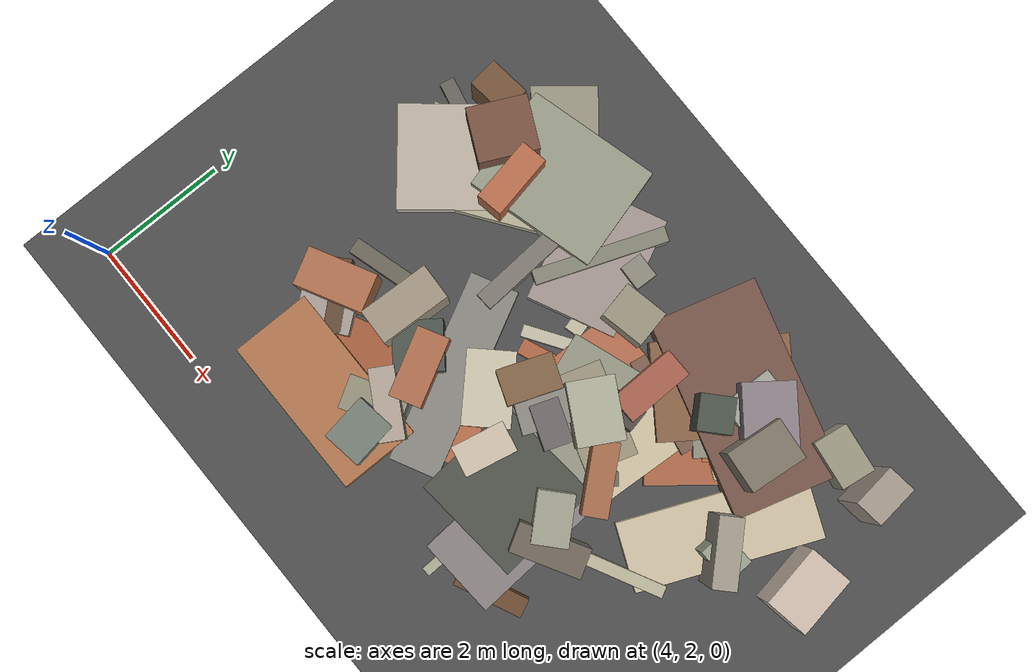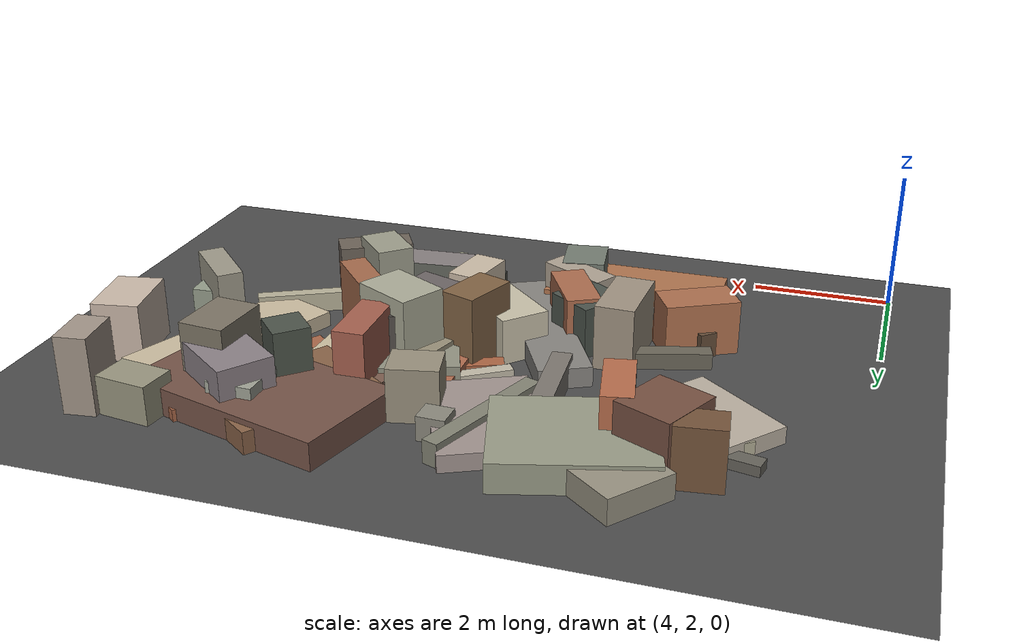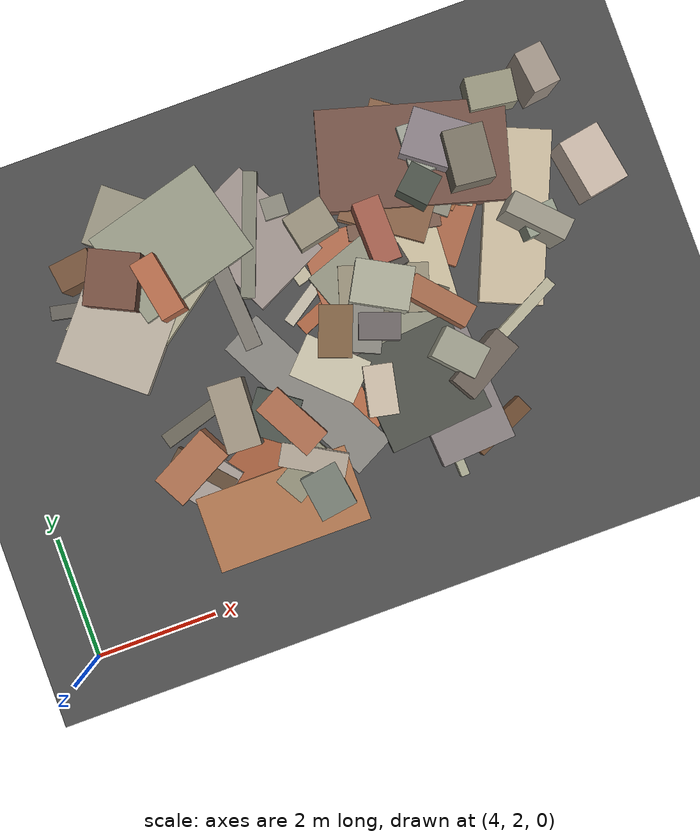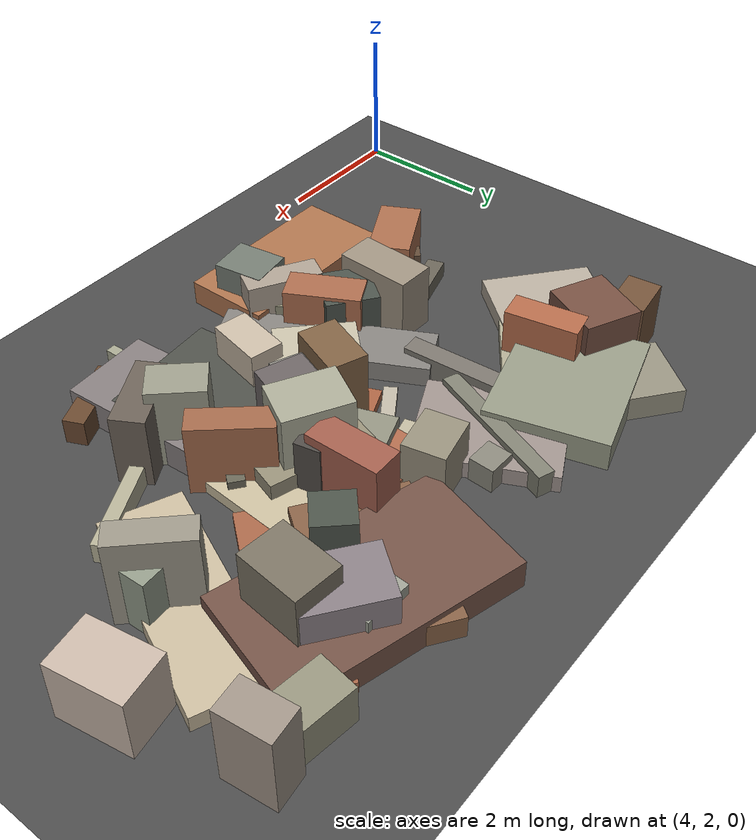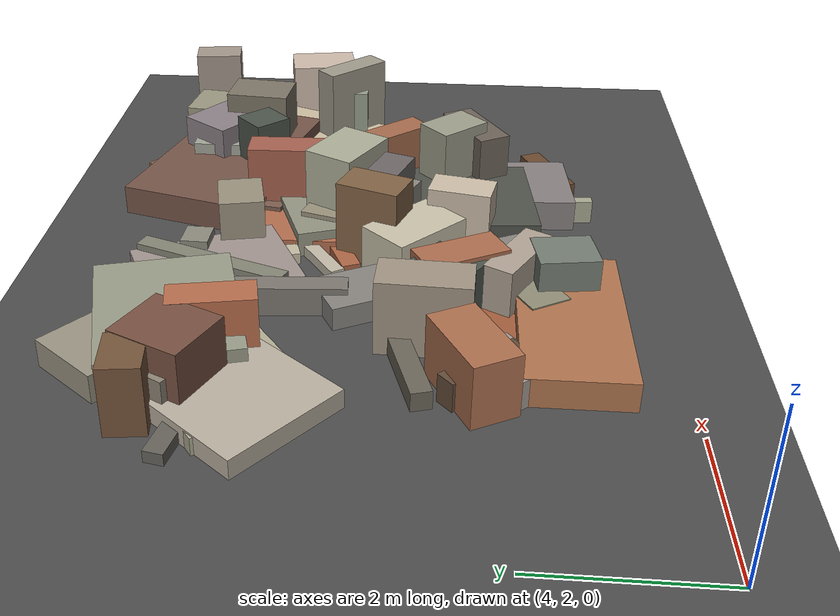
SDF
<sdf version="1.6">
 <world name="navitas_arena">
  <model name="ground_plane">
   <static>true</static>
   <link name="link">
    <collision name="collision">
     <geometry><plane><normal>0 0 1</normal><size>400 400</size></plane></geometry>
     <surface><friction><ode><mu>0.800</mu><mu2>0.800</mu2></ode></friction></surface>
    </collision>
    <visual name="visual">
     <cast_shadows>false</cast_shadows>
     <geometry><plane><normal>0 0 1</normal><size>400 400</size></plane></geometry>
     <material>
      <specular>0.04 0.04 0.04 1</specular>
      <script>
       <uri>file://media/materials/scripts/navitas_asphalt.material</uri>
       <name>Navitas/RealArenaAsphalt</name>
      </script>
     </material>
    </visual>
   </link>
  </model>
  <model name="deb_orta_6">
   <static>true</static>
   <pose>7.530 4.062 0.000 0 0 0</pose>
   <link name="link">
    <collision name="col_0">
     <pose>-0.069 0.864 0.470 0.000 0.000 1.528</pose>
     <geometry><box><size>1.107 0.557 0.940</size></box></geometry>
    </collision>
    <visual name="vis_0">
     <pose>-0.069 0.864 0.470 0.000 0.000 1.528</pose>
     <geometry><box><size>1.107 0.557 0.940</size></box></geometry>
     <material>
      <ambient>0.58 0.53 0.47 1</ambient>
      <diffuse>0.63 0.58 0.51 1</diffuse>
      <specular>0.05 0.05 0.045 1</specular>
     </material>
    </visual>
    <collision name="col_1">
     <pose>0.189 0.129 0.082 0.000 0.000 3.618</pose>
     <geometry><box><size>2.260 0.731 0.165</size></box></geometry>
    </collision>
    <visual name="vis_1">
     <pose>0.189 0.129 0.082 0.000 0.000 3.618</pose>
     <geometry><box><size>2.260 0.731 0.165</size></box></geometry>
     <material>
      <ambient>0.59 0.34 0.22 1</ambient>
      <diffuse>0.64 0.37 0.24 1</diffuse>
      <specular>0.05 0.05 0.045 1</specular>
     </material>
    </visual>
    <collision name="col_2">
     <pose>-0.860 0.202 0.180 0.000 0.000 2.301</pose>
     <geometry><box><size>1.088 0.252 0.359</size></box></geometry>
    </collision>
    <visual name="vis_2">
     <pose>-0.860 0.202 0.180 0.000 0.000 2.301</pose>
     <geometry><box><size>1.088 0.252 0.359</size></box></geometry>
     <material>
      <ambient>0.36 0.28 0.20 1</ambient>
      <diffuse>0.39 0.30 0.22 1</diffuse>
      <specular>0.05 0.05 0.045 1</specular>
     </material>
    </visual>
    <collision name="col_3">
     <pose>0.119 -0.811 0.182 0.000 0.000 3.142</pose>
     <geometry><box><size>2.541 1.250 0.364</size></box></geometry>
    </collision>
    <visual name="vis_3">
     <pose>0.119 -0.811 0.182 0.000 0.000 3.142</pose>
     <geometry><box><size>2.541 1.250 0.364</size></box></geometry>
     <material>
      <ambient>0.64 0.42 0.29 1</ambient>
      <diffuse>0.69 0.46 0.31 1</diffuse>
      <specular>0.05 0.05 0.045 1</specular>
     </material>
    </visual>
    <collision name="col_4">
     <pose>0.740 0.470 0.398 0.000 0.000 2.064</pose>
     <geometry><box><size>1.072 0.493 0.795</size></box></geometry>
    </collision>
    <visual name="vis_4">
     <pose>0.740 0.470 0.398 0.000 0.000 2.064</pose>
     <geometry><box><size>1.072 0.493 0.795</size></box></geometry>
     <material>
      <ambient>0.63 0.40 0.29 1</ambient>
      <diffuse>0.68 0.43 0.31 1</diffuse>
      <specular>0.05 0.05 0.045 1</specular>
     </material>
    </visual>
    <collision name="col_5">
     <pose>0.854 -0.218 0.375 0.000 0.000 2.623</pose>
     <geometry><box><size>1.074 0.381 0.750</size></box></geometry>
    </collision>
    <visual name="vis_5">
     <pose>0.854 -0.218 0.375 0.000 0.000 2.623</pose>
     <geometry><box><size>1.074 0.381 0.750</size></box></geometry>
     <material>
      <ambient>0.64 0.59 0.53 1</ambient>
      <diffuse>0.69 0.64 0.58 1</diffuse>
      <specular>0.05 0.05 0.045 1</specular>
     </material>
    </visual>
    <collision name="col_6">
     <pose>0.493 0.645 0.371 0.000 0.000 2.508</pose>
     <geometry><box><size>0.752 0.742 0.742</size></box></geometry>
    </collision>
    <visual name="vis_6">
     <pose>0.493 0.645 0.371 0.000 0.000 2.508</pose>
     <geometry><box><size>0.752 0.742 0.742</size></box></geometry>
     <material>
      <ambient>0.27 0.30 0.28 1</ambient>
      <diffuse>0.30 0.33 0.30 1</diffuse>
      <specular>0.05 0.05 0.045 1</specular>
     </material>
    </visual>
   </link>
  </model>
  <model name="deb_orta_40">
   <static>true</static>
   <pose>11.019 3.937 0.000 0 0 0</pose>
   <link name="link">
    <collision name="col_0">
     <pose>-0.459 -0.420 0.157 0.000 0.000 1.612</pose>
     <geometry><box><size>1.530 0.141 0.314</size></box></geometry>
    </collision>
    <visual name="vis_0">
     <pose>-0.459 -0.420 0.157 0.000 0.000 1.612</pose>
     <geometry><box><size>1.530 0.141 0.314</size></box></geometry>
     <material>
      <ambient>0.61 0.61 0.53 1</ambient>
      <diffuse>0.66 0.66 0.57 1</diffuse>
      <specular>0.05 0.05 0.045 1</specular>
     </material>
    </visual>
    <collision name="col_1">
     <pose>-0.165 0.171 0.205 0.000 0.000 1.638</pose>
     <geometry><box><size>2.134 1.239 0.411</size></box></geometry>
    </collision>
    <visual name="vis_1">
     <pose>-0.165 0.171 0.205 0.000 0.000 1.638</pose>
     <geometry><box><size>2.134 1.239 0.411</size></box></geometry>
     <material>
      <ambient>0.49 0.47 0.46 1</ambient>
      <diffuse>0.53 0.50 0.50 1</diffuse>
      <specular>0.05 0.05 0.045 1</specular>
     </material>
    </visual>
    <collision name="col_2">
     <pose>-0.411 0.682 0.117 0.000 0.000 -0.648</pose>
     <geometry><box><size>1.183 0.277 0.235</size></box></geometry>
    </collision>
    <visual name="vis_2">
     <pose>-0.411 0.682 0.117 0.000 0.000 -0.648</pose>
     <geometry><box><size>1.183 0.277 0.235</size></box></geometry>
     <material>
      <ambient>0.34 0.33 0.33 1</ambient>
      <diffuse>0.37 0.36 0.35 1</diffuse>
      <specular>0.05 0.05 0.045 1</specular>
     </material>
    </visual>
    <collision name="col_3">
     <pose>0.375 -0.628 0.183 0.000 0.000 0.429</pose>
     <geometry><box><size>1.068 0.291 0.365</size></box></geometry>
    </collision>
    <visual name="vis_3">
     <pose>0.375 -0.628 0.183 0.000 0.000 0.429</pose>
     <geometry><box><size>1.068 0.291 0.365</size></box></geometry>
     <material>
      <ambient>0.39 0.27 0.18 1</ambient>
      <diffuse>0.42 0.29 0.19 1</diffuse>
      <specular>0.05 0.05 0.045 1</specular>
     </material>
    </visual>
    <collision name="col_4">
     <pose>-0.610 0.465 0.208 0.000 0.000 0.092</pose>
     <geometry><box><size>1.730 1.667 0.416</size></box></geometry>
    </collision>
    <visual name="vis_4">
     <pose>-0.610 0.465 0.208 0.000 0.000 0.092</pose>
     <geometry><box><size>1.730 1.667 0.416</size></box></geometry>
     <material>
      <ambient>0.29 0.30 0.27 1</ambient>
      <diffuse>0.31 0.32 0.29 1</diffuse>
      <specular>0.05 0.05 0.045 1</specular>
     </material>
    </visual>
   </link>
  </model>
  <model name="deb_orta_56">
   <static>true</static>
   <pose>12.307 7.168 0.000 0 0 0</pose>
   <link name="link">
    <collision name="col_0">
     <pose>-0.258 0.096 0.085 0.000 0.000 0.904</pose>
     <geometry><box><size>2.559 0.924 0.170</size></box></geometry>
    </collision>
    <visual name="vis_0">
     <pose>-0.258 0.096 0.085 0.000 0.000 0.904</pose>
     <geometry><box><size>2.559 0.924 0.170</size></box></geometry>
     <material>
      <ambient>0.62 0.38 0.27 1</ambient>
      <diffuse>0.67 0.41 0.29 1</diffuse>
      <specular>0.05 0.05 0.045 1</specular>
     </material>
    </visual>
    <collision name="col_1">
     <pose>-0.021 0.337 0.547 0.000 0.000 3.043</pose>
     <geometry><box><size>0.650 0.887 1.095</size></box></geometry>
    </collision>
    <visual name="vis_1">
     <pose>-0.021 0.337 0.547 0.000 0.000 3.043</pose>
     <geometry><box><size>0.650 0.887 1.095</size></box></geometry>
     <material>
      <ambient>0.45 0.42 0.37 1</ambient>
      <diffuse>0.49 0.46 0.40 1</diffuse>
      <specular>0.05 0.05 0.045 1</specular>
     </material>
    </visual>
    <collision name="col_2">
     <pose>0.626 -0.051 0.105 0.000 0.000 0.935</pose>
     <geometry><box><size>0.485 0.336 0.211</size></box></geometry>
    </collision>
    <visual name="vis_2">
     <pose>0.626 -0.051 0.105 0.000 0.000 0.935</pose>
     <geometry><box><size>0.485 0.336 0.211</size></box></geometry>
     <material>
      <ambient>0.61 0.60 0.54 1</ambient>
      <diffuse>0.66 0.65 0.59 1</diffuse>
      <specular>0.05 0.05 0.045 1</specular>
     </material>
    </visual>
    <collision name="col_3">
     <pose>-0.557 -0.140 0.140 0.000 0.000 2.486</pose>
     <geometry><box><size>0.322 0.396 0.280</size></box></geometry>
    </collision>
    <visual name="vis_3">
     <pose>-0.557 -0.140 0.140 0.000 0.000 2.486</pose>
     <geometry><box><size>0.322 0.396 0.280</size></box></geometry>
     <material>
      <ambient>0.52 0.51 0.46 1</ambient>
      <diffuse>0.56 0.55 0.49 1</diffuse>
      <specular>0.05 0.05 0.045 1</specular>
     </material>
    </visual>
    <collision name="col_4">
     <pose>-0.594 -0.005 0.095 0.000 0.000 2.722</pose>
     <geometry><box><size>1.189 0.240 0.189</size></box></geometry>
    </collision>
    <visual name="vis_4">
     <pose>-0.594 -0.005 0.095 0.000 0.000 2.722</pose>
     <geometry><box><size>1.189 0.240 0.189</size></box></geometry>
     <material>
      <ambient>0.65 0.64 0.53 1</ambient>
      <diffuse>0.70 0.69 0.58 1</diffuse>
      <specular>0.05 0.05 0.045 1</specular>
     </material>
    </visual>
   </link>
  </model>
  <model name="deb_orta_132">
   <static>true</static>
   <pose>11.331 5.401 0.000 0 0 0</pose>
   <link name="link">
    <collision name="col_0">
     <pose>-0.566 0.751 0.131 0.000 0.000 4.411</pose>
     <geometry><box><size>0.320 0.203 0.262</size></box></geometry>
    </collision>
    <visual name="vis_0">
     <pose>-0.566 0.751 0.131 0.000 0.000 4.411</pose>
     <geometry><box><size>0.320 0.203 0.262</size></box></geometry>
     <material>
      <ambient>0.50 0.45 0.43 1</ambient>
      <diffuse>0.54 0.48 0.46 1</diffuse>
      <specular>0.05 0.05 0.045 1</specular>
     </material>
    </visual>
    <collision name="col_1">
     <pose>-0.231 -0.745 0.580 0.000 0.000 2.317</pose>
     <geometry><box><size>0.757 0.531 1.161</size></box></geometry>
    </collision>
    <visual name="vis_1">
     <pose>-0.231 -0.745 0.580 0.000 0.000 2.317</pose>
     <geometry><box><size>0.757 0.531 1.161</size></box></geometry>
     <material>
      <ambient>0.57 0.57 0.51 1</ambient>
      <diffuse>0.62 0.62 0.55 1</diffuse>
      <specular>0.05 0.05 0.045 1</specular>
     </material>
    </visual>
    <collision name="col_2">
     <pose>0.085 -1.050 0.505 0.000 0.000 3.662</pose>
     <geometry><box><size>1.068 0.451 1.010</size></box></geometry>
    </collision>
    <visual name="vis_2">
     <pose>0.085 -1.050 0.505 0.000 0.000 3.662</pose>
     <geometry><box><size>1.068 0.451 1.010</size></box></geometry>
     <material>
      <ambient>0.39 0.36 0.33 1</ambient>
      <diffuse>0.43 0.39 0.35 1</diffuse>
      <specular>0.05 0.05 0.045 1</specular>
     </material>
    </visual>
    <collision name="col_3">
     <pose>0.574 -0.729 0.144 0.000 0.000 3.622</pose>
     <geometry><box><size>2.398 0.184 0.289</size></box></geometry>
    </collision>
    <visual name="vis_3">
     <pose>0.574 -0.729 0.144 0.000 0.000 3.622</pose>
     <geometry><box><size>2.398 0.184 0.289</size></box></geometry>
     <material>
      <ambient>0.66 0.65 0.55 1</ambient>
      <diffuse>0.72 0.70 0.60 1</diffuse>
      <specular>0.05 0.05 0.045 1</specular>
     </material>
    </visual>
    <collision name="col_4">
     <pose>-1.117 0.376 0.100 0.000 0.000 4.187</pose>
     <geometry><box><size>0.478 0.465 0.201</size></box></geometry>
    </collision>
    <visual name="vis_4">
     <pose>-1.117 0.376 0.100 0.000 0.000 4.187</pose>
     <geometry><box><size>0.478 0.465 0.201</size></box></geometry>
     <material>
      <ambient>0.72 0.66 0.57 1</ambient>
      <diffuse>0.78 0.71 0.61 1</diffuse>
      <specular>0.05 0.05 0.045 1</specular>
     </material>
    </visual>
   </link>
  </model>
  <model name="deb_orta_134">
   <static>true</static>
   <pose>6.695 7.687 0.000 0 0 0</pose>
   <link name="link">
    <collision name="col_0">
     <pose>-0.127 -0.521 0.109 0.000 0.000 3.773</pose>
     <geometry><box><size>2.034 1.493 0.217</size></box></geometry>
    </collision>
    <visual name="vis_0">
     <pose>-0.127 -0.521 0.109 0.000 0.000 3.773</pose>
     <geometry><box><size>2.034 1.493 0.217</size></box></geometry>
     <material>
      <ambient>0.65 0.63 0.54 1</ambient>
      <diffuse>0.70 0.68 0.58 1</diffuse>
      <specular>0.05 0.05 0.045 1</specular>
     </material>
    </visual>
    <collision name="col_1">
     <pose>-0.003 0.821 0.178 0.000 0.000 2.468</pose>
     <geometry><box><size>0.865 0.991 0.357</size></box></geometry>
    </collision>
    <visual name="vis_1">
     <pose>-0.003 0.821 0.178 0.000 0.000 2.468</pose>
     <geometry><box><size>0.865 0.991 0.357</size></box></geometry>
     <material>
      <ambient>0.56 0.54 0.47 1</ambient>
      <diffuse>0.60 0.58 0.51 1</diffuse>
      <specular>0.05 0.05 0.045 1</specular>
     </material>
    </visual>
    <collision name="col_2">
     <pose>0.683 0.096 0.121 0.000 0.000 2.749</pose>
     <geometry><box><size>1.176 0.239 0.242</size></box></geometry>
    </collision>
    <visual name="vis_2">
     <pose>0.683 0.096 0.121 0.000 0.000 2.749</pose>
     <geometry><box><size>1.176 0.239 0.242</size></box></geometry>
     <material>
      <ambient>0.63 0.39 0.24 1</ambient>
      <diffuse>0.68 0.42 0.26 1</diffuse>
      <specular>0.05 0.05 0.045 1</specular>
     </material>
    </visual>
    <collision name="col_3">
     <pose>-0.832 0.246 0.425 0.000 0.000 3.267</pose>
     <geometry><box><size>0.651 0.469 0.850</size></box></geometry>
    </collision>
    <visual name="vis_3">
     <pose>-0.832 0.246 0.425 0.000 0.000 3.267</pose>
     <geometry><box><size>0.651 0.469 0.850</size></box></geometry>
     <material>
      <ambient>0.43 0.31 0.21 1</ambient>
      <diffuse>0.46 0.33 0.23 1</diffuse>
      <specular>0.05 0.05 0.045 1</specular>
     </material>
    </visual>
    <collision name="col_4">
     <pose>0.310 -0.441 0.430 0.000 0.000 1.761</pose>
     <geometry><box><size>1.014 0.417 0.859</size></box></geometry>
    </collision>
    <visual name="vis_4">
     <pose>0.310 -0.441 0.430 0.000 0.000 1.761</pose>
     <geometry><box><size>1.014 0.417 0.859</size></box></geometry>
     <material>
      <ambient>0.67 0.40 0.28 1</ambient>
      <diffuse>0.72 0.43 0.30 1</diffuse>
      <specular>0.05 0.05 0.045 1</specular>
     </material>
    </visual>
    <collision name="col_5">
     <pose>0.708 0.184 0.204 0.000 0.000 3.415</pose>
     <geometry><box><size>2.085 1.652 0.407</size></box></geometry>
    </collision>
    <visual name="vis_5">
     <pose>0.708 0.184 0.204 0.000 0.000 3.415</pose>
     <geometry><box><size>2.085 1.652 0.407</size></box></geometry>
     <material>
      <ambient>0.55 0.56 0.49 1</ambient>
      <diffuse>0.60 0.61 0.53 1</diffuse>
      <specular>0.05 0.05 0.045 1</specular>
     </material>
    </visual>
   </link>
  </model>
  <model name="deb_orta_154">
   <static>true</static>
   <pose>9.242 7.827 0.000 0 0 0</pose>
   <link name="link">
    <collision name="col_0">
     <pose>-0.078 0.052 0.174 0.000 0.000 1.535</pose>
     <geometry><box><size>0.352 0.393 0.349</size></box></geometry>
    </collision>
    <visual name="vis_0">
     <pose>-0.078 0.052 0.174 0.000 0.000 1.535</pose>
     <geometry><box><size>0.352 0.393 0.349</size></box></geometry>
     <material>
      <ambient>0.51 0.50 0.45 1</ambient>
      <diffuse>0.55 0.54 0.49 1</diffuse>
      <specular>0.05 0.05 0.045 1</specular>
     </material>
    </visual>
    <collision name="col_1">
     <pose>-0.612 -0.229 0.166 0.000 0.000 1.210</pose>
     <geometry><box><size>2.051 0.232 0.331</size></box></geometry>
    </collision>
    <visual name="vis_1">
     <pose>-0.612 -0.229 0.166 0.000 0.000 1.210</pose>
     <geometry><box><size>2.051 0.232 0.331</size></box></geometry>
     <material>
      <ambient>0.48 0.48 0.43 1</ambient>
      <diffuse>0.52 0.52 0.46 1</diffuse>
      <specular>0.05 0.05 0.045 1</specular>
     </material>
    </visual>
    <collision name="col_2">
     <pose>-0.226 -0.421 0.074 0.000 0.000 1.836</pose>
     <geometry><box><size>1.708 0.261 0.148</size></box></geometry>
    </collision>
    <visual name="vis_2">
     <pose>-0.226 -0.421 0.074 0.000 0.000 1.836</pose>
     <geometry><box><size>1.708 0.261 0.148</size></box></geometry>
     <material>
      <ambient>0.70 0.68 0.58 1</ambient>
      <diffuse>0.76 0.73 0.63 1</diffuse>
      <specular>0.05 0.05 0.045 1</specular>
     </material>
    </visual>
    <collision name="col_3">
     <pose>0.370 -0.450 0.380 0.000 0.000 1.783</pose>
     <geometry><box><size>0.578 0.696 0.760</size></box></geometry>
    </collision>
    <visual name="vis_3">
     <pose>0.370 -0.450 0.380 0.000 0.000 1.783</pose>
     <geometry><box><size>0.578 0.696 0.760</size></box></geometry>
     <material>
      <ambient>0.55 0.53 0.46 1</ambient>
      <diffuse>0.60 0.57 0.49 1</diffuse>
      <specular>0.05 0.05 0.045 1</specular>
     </material>
    </visual>
    <collision name="col_4">
     <pose>-0.604 -0.286 0.121 0.000 0.000 2.024</pose>
     <geometry><box><size>1.881 1.396 0.242</size></box></geometry>
    </collision>
    <visual name="vis_4">
     <pose>-0.604 -0.286 0.121 0.000 0.000 2.024</pose>
     <geometry><box><size>1.881 1.396 0.242</size></box></geometry>
     <material>
      <ambient>0.58 0.54 0.52 1</ambient>
      <diffuse>0.63 0.58 0.56 1</diffuse>
      <specular>0.05 0.05 0.045 1</specular>
     </material>
    </visual>
   </link>
  </model>
  <model name="deb_orta_195">
   <static>true</static>
   <pose>7.157 4.307 0.000 0 0 0</pose>
   <link name="link">
    <collision name="col_0">
     <pose>-0.229 0.807 0.118 0.000 0.000 0.288</pose>
     <geometry><box><size>1.467 0.247 0.235</size></box></geometry>
    </collision>
    <visual name="vis_0">
     <pose>-0.229 0.807 0.118 0.000 0.000 0.288</pose>
     <geometry><box><size>1.467 0.247 0.235</size></box></geometry>
     <material>
      <ambient>0.39 0.37 0.33 1</ambient>
      <diffuse>0.42 0.40 0.35 1</diffuse>
      <specular>0.05 0.05 0.045 1</specular>
     </material>
    </visual>
    <collision name="col_1">
     <pose>-0.614 0.078 0.391 0.000 0.000 0.490</pose>
     <geometry><box><size>1.065 0.594 0.782</size></box></geometry>
    </collision>
    <visual name="vis_1">
     <pose>-0.614 0.078 0.391 0.000 0.000 0.490</pose>
     <geometry><box><size>1.065 0.594 0.782</size></box></geometry>
     <material>
      <ambient>0.63 0.40 0.28 1</ambient>
      <diffuse>0.68 0.44 0.31 1</diffuse>
      <specular>0.05 0.05 0.045 1</specular>
     </material>
    </visual>
    <collision name="col_2">
     <pose>-0.471 -0.252 0.178 0.000 0.000 2.233</pose>
     <geometry><box><size>0.754 0.820 0.357</size></box></geometry>
    </collision>
    <visual name="vis_2">
     <pose>-0.471 -0.252 0.178 0.000 0.000 2.233</pose>
     <geometry><box><size>0.754 0.820 0.357</size></box></geometry>
     <material>
      <ambient>0.61 0.56 0.53 1</ambient>
      <diffuse>0.65 0.61 0.58 1</diffuse>
      <specular>0.05 0.05 0.045 1</specular>
     </material>
    </visual>
    <collision name="col_3">
     <pose>0.456 0.372 0.062 0.000 0.000 0.393</pose>
     <geometry><box><size>0.426 0.372 0.125</size></box></geometry>
    </collision>
    <visual name="vis_3">
     <pose>0.456 0.372 0.062 0.000 0.000 0.393</pose>
     <geometry><box><size>0.426 0.372 0.125</size></box></geometry>
     <material>
      <ambient>0.39 0.23 0.18 1</ambient>
      <diffuse>0.42 0.25 0.19 1</diffuse>
      <specular>0.05 0.05 0.045 1</specular>
     </material>
    </visual>
   </link>
  </model>
  <model name="deb_orta_205">
   <static>true</static>
   <pose>13.095 7.337 0.000 0 0 0</pose>
   <link name="link">
    <collision name="col_0">
     <pose>-0.285 -0.915 0.111 0.000 0.000 1.168</pose>
     <geometry><box><size>2.863 1.042 0.223</size></box></geometry>
    </collision>
    <visual name="vis_0">
     <pose>-0.285 -0.915 0.111 0.000 0.000 1.168</pose>
     <geometry><box><size>2.863 1.042 0.223</size></box></geometry>
     <material>
      <ambient>0.74 0.68 0.59 1</ambient>
      <diffuse>0.80 0.74 0.63 1</diffuse>
      <specular>0.05 0.05 0.045 1</specular>
     </material>
    </visual>
    <collision name="col_1">
     <pose>1.047 -0.553 0.430 0.000 0.000 3.317</pose>
     <geometry><box><size>0.679 0.984 0.859</size></box></geometry>
    </collision>
    <visual name="vis_1">
     <pose>1.047 -0.553 0.430 0.000 0.000 3.317</pose>
     <geometry><box><size>0.679 0.984 0.859</size></box></geometry>
     <material>
      <ambient>0.74 0.67 0.62 1</ambient>
      <diffuse>0.80 0.73 0.67 1</diffuse>
      <specular>0.05 0.05 0.045 1</specular>
     </material>
    </visual>
    <collision name="col_2">
     <pose>-0.045 -1.138 0.425 0.000 0.000 3.194</pose>
     <geometry><box><size>0.564 0.437 0.850</size></box></geometry>
    </collision>
    <visual name="vis_2">
     <pose>-0.045 -1.138 0.425 0.000 0.000 3.194</pose>
     <geometry><box><size>0.564 0.437 0.850</size></box></geometry>
     <material>
      <ambient>0.55 0.57 0.51 1</ambient>
      <diffuse>0.59 0.62 0.55 1</diffuse>
      <specular>0.05 0.05 0.045 1</specular>
     </material>
    </visual>
    <collision name="col_3">
     <pose>-0.130 -1.116 0.616 0.000 0.000 2.338</pose>
     <geometry><box><size>1.018 0.355 1.231</size></box></geometry>
    </collision>
    <visual name="vis_3">
     <pose>-0.130 -1.116 0.616 0.000 0.000 2.338</pose>
     <geometry><box><size>1.018 0.355 1.231</size></box></geometry>
     <material>
      <ambient>0.57 0.56 0.50 1</ambient>
      <diffuse>0.62 0.60 0.54 1</diffuse>
      <specular>0.05 0.05 0.045 1</specular>
     </material>
    </visual>
    <collision name="col_4">
     <pose>-0.027 1.099 0.278 0.000 0.000 1.437</pose>
     <geometry><box><size>0.540 0.770 0.556</size></box></geometry>
    </collision>
    <visual name="vis_4">
     <pose>-0.027 1.099 0.278 0.000 0.000 1.437</pose>
     <geometry><box><size>0.540 0.770 0.556</size></box></geometry>
     <material>
      <ambient>0.56 0.55 0.47 1</ambient>
      <diffuse>0.60 0.59 0.50 1</diffuse>
      <specular>0.05 0.05 0.045 1</specular>
     </material>
    </visual>
    <collision name="col_5">
     <pose>0.659 1.082 0.551 0.000 0.000 1.696</pose>
     <geometry><box><size>0.685 0.451 1.103</size></box></geometry>
    </collision>
    <visual name="vis_5">
     <pose>0.659 1.082 0.551 0.000 0.000 1.696</pose>
     <geometry><box><size>0.685 0.451 1.103</size></box></geometry>
     <material>
      <ambient>0.59 0.55 0.50 1</ambient>
      <diffuse>0.64 0.59 0.54 1</diffuse>
      <specular>0.05 0.05 0.045 1</specular>
     </material>
    </visual>
    <collision name="col_6">
     <pose>-1.117 0.575 0.411 0.000 0.000 2.500</pose>
     <geometry><box><size>1.095 0.782 0.823</size></box></geometry>
    </collision>
    <visual name="vis_6">
     <pose>-1.117 0.575 0.411 0.000 0.000 2.500</pose>
     <geometry><box><size>1.095 0.782 0.823</size></box></geometry>
     <material>
      <ambient>0.51 0.48 0.49 1</ambient>
      <diffuse>0.55 0.51 0.53 1</diffuse>
      <specular>0.05 0.05 0.045 1</specular>
     </material>
    </visual>
   </link>
  </model>
  <model name="deb_orta_213">
   <static>true</static>
   <pose>7.034 6.936 0.000 0 0 0</pose>
   <link name="link">
    <collision name="col_0">
     <pose>-0.724 0.333 0.073 0.000 0.000 2.937</pose>
     <geometry><box><size>2.359 0.230 0.147</size></box></geometry>
    </collision>
    <visual name="vis_0">
     <pose>-0.724 0.333 0.073 0.000 0.000 2.937</pose>
     <geometry><box><size>2.359 0.230 0.147</size></box></geometry>
     <material>
      <ambient>0.37 0.36 0.33 1</ambient>
      <diffuse>0.40 0.39 0.36 1</diffuse>
      <specular>0.05 0.05 0.045 1</specular>
     </material>
    </visual>
    <collision name="col_1">
     <pose>-0.717 0.153 0.121 0.000 0.000 0.879</pose>
     <geometry><box><size>2.258 1.584 0.241</size></box></geometry>
    </collision>
    <visual name="vis_1">
     <pose>-0.717 0.153 0.121 0.000 0.000 0.879</pose>
     <geometry><box><size>2.258 1.584 0.241</size></box></geometry>
     <material>
      <ambient>0.68 0.64 0.58 1</ambient>
      <diffuse>0.73 0.69 0.63 1</diffuse>
      <specular>0.05 0.05 0.045 1</specular>
     </material>
    </visual>
    <collision name="col_2">
     <pose>-0.723 0.648 0.258 0.000 0.000 2.636</pose>
     <geometry><box><size>0.876 0.563 0.517</size></box></geometry>
    </collision>
    <visual name="vis_2">
     <pose>-0.723 0.648 0.258 0.000 0.000 2.636</pose>
     <geometry><box><size>0.876 0.563 0.517</size></box></geometry>
     <material>
      <ambient>0.52 0.48 0.42 1</ambient>
      <diffuse>0.56 0.52 0.46 1</diffuse>
      <specular>0.05 0.05 0.045 1</specular>
     </material>
    </visual>
    <collision name="col_3">
     <pose>0.993 -0.137 0.186 0.000 0.000 1.638</pose>
     <geometry><box><size>1.915 0.283 0.372</size></box></geometry>
    </collision>
    <visual name="vis_3">
     <pose>0.993 -0.137 0.186 0.000 0.000 1.638</pose>
     <geometry><box><size>1.915 0.283 0.372</size></box></geometry>
     <material>
      <ambient>0.45 0.44 0.41 1</ambient>
      <diffuse>0.49 0.47 0.44 1</diffuse>
      <specular>0.05 0.05 0.045 1</specular>
     </material>
    </visual>
    <collision name="col_4">
     <pose>-0.667 0.665 0.429 0.000 0.000 1.125</pose>
     <geometry><box><size>0.911 0.828 0.858</size></box></geometry>
    </collision>
    <visual name="vis_4">
     <pose>-0.667 0.665 0.429 0.000 0.000 1.125</pose>
     <geometry><box><size>0.911 0.828 0.858</size></box></geometry>
     <material>
      <ambient>0.44 0.30 0.24 1</ambient>
      <diffuse>0.47 0.32 0.26 1</diffuse>
      <specular>0.05 0.05 0.045 1</specular>
     </material>
    </visual>
    <collision name="col_5">
     <pose>-0.293 -0.241 0.069 0.000 0.000 2.222</pose>
     <geometry><box><size>0.193 0.369 0.137</size></box></geometry>
    </collision>
    <visual name="vis_5">
     <pose>-0.293 -0.241 0.069 0.000 0.000 2.222</pose>
     <geometry><box><size>0.193 0.369 0.137</size></box></geometry>
     <material>
      <ambient>0.43 0.29 0.19 1</ambient>
      <diffuse>0.46 0.31 0.21 1</diffuse>
      <specular>0.05 0.05 0.045 1</specular>
     </material>
    </visual>
   </link>
  </model>
  <model name="deb_orta_215">
   <static>true</static>
   <pose>8.300 4.150 0.000 0 0 0</pose>
   <link name="link">
    <collision name="col_0">
     <pose>-0.042 -0.343 0.123 0.000 0.000 1.239</pose>
     <geometry><box><size>0.377 0.407 0.245</size></box></geometry>
    </collision>
    <visual name="vis_0">
     <pose>-0.042 -0.343 0.123 0.000 0.000 1.239</pose>
     <geometry><box><size>0.377 0.407 0.245</size></box></geometry>
     <material>
      <ambient>0.51 0.52 0.46 1</ambient>
      <diffuse>0.55 0.57 0.50 1</diffuse>
      <specular>0.05 0.05 0.045 1</specular>
     </material>
    </visual>
    <collision name="col_1">
     <pose>0.139 -0.851 0.379 0.000 0.000 1.723</pose>
     <geometry><box><size>0.736 0.619 0.758</size></box></geometry>
    </collision>
    <visual name="vis_1">
     <pose>0.139 -0.851 0.379 0.000 0.000 1.723</pose>
     <geometry><box><size>0.736 0.619 0.758</size></box></geometry>
     <material>
      <ambient>0.43 0.46 0.41 1</ambient>
      <diffuse>0.46 0.49 0.45 1</diffuse>
      <specular>0.05 0.05 0.045 1</specular>
     </material>
    </visual>
    <collision name="col_2">
     <pose>-0.078 -0.445 0.191 0.000 0.000 0.529</pose>
     <geometry><box><size>0.926 0.524 0.381</size></box></geometry>
    </collision>
    <visual name="vis_2">
     <pose>-0.078 -0.445 0.191 0.000 0.000 0.529</pose>
     <geometry><box><size>0.926 0.524 0.381</size></box></geometry>
     <material>
      <ambient>0.53 0.51 0.44 1</ambient>
      <diffuse>0.57 0.56 0.47 1</diffuse>
      <specular>0.05 0.05 0.045 1</specular>
     </material>
    </visual>
    <collision name="col_3">
     <pose>0.342 0.696 0.145 0.000 0.000 2.048</pose>
     <geometry><box><size>2.955 0.752 0.291</size></box></geometry>
    </collision>
    <visual name="vis_3">
     <pose>0.342 0.696 0.145 0.000 0.000 2.048</pose>
     <geometry><box><size>2.955 0.752 0.291</size></box></geometry>
     <material>
      <ambient>0.49 0.48 0.46 1</ambient>
      <diffuse>0.53 0.52 0.50 1</diffuse>
      <specular>0.05 0.05 0.045 1</specular>
     </material>
    </visual>
   </link>
  </model>
  <model name="deb_orta_223">
   <static>true</static>
   <pose>9.751 4.978 0.000 0 0 0</pose>
   <link name="link">
    <collision name="col_0">
     <pose>-0.628 0.130 0.332 0.000 0.000 -0.763</pose>
     <geometry><box><size>1.112 0.718 0.664</size></box></geometry>
    </collision>
    <visual name="vis_0">
     <pose>-0.628 0.130 0.332 0.000 0.000 -0.763</pose>
     <geometry><box><size>1.112 0.718 0.664</size></box></geometry>
     <material>
      <ambient>0.73 0.70 0.62 1</ambient>
      <diffuse>0.79 0.76 0.67 1</diffuse>
      <specular>0.05 0.05 0.045 1</specular>
     </material>
    </visual>
    <collision name="col_1">
     <pose>0.001 -0.458 0.444 0.000 0.000 1.368</pose>
     <geometry><box><size>0.812 0.472 0.887</size></box></geometry>
    </collision>
    <visual name="vis_1">
     <pose>0.001 -0.458 0.444 0.000 0.000 1.368</pose>
     <geometry><box><size>0.812 0.472 0.887</size></box></geometry>
     <material>
      <ambient>0.74 0.69 0.61 1</ambient>
      <diffuse>0.80 0.74 0.66 1</diffuse>
      <specular>0.05 0.05 0.045 1</specular>
     </material>
    </visual>
    <collision name="col_2">
     <pose>-0.101 0.285 0.189 0.000 0.000 1.367</pose>
     <geometry><box><size>1.238 0.184 0.378</size></box></geometry>
    </collision>
    <visual name="vis_2">
     <pose>-0.101 0.285 0.189 0.000 0.000 1.367</pose>
     <geometry><box><size>1.238 0.184 0.378</size></box></geometry>
     <material>
      <ambient>0.40 0.35 0.34 1</ambient>
      <diffuse>0.43 0.38 0.37 1</diffuse>
      <specular>0.05 0.05 0.045 1</specular>
     </material>
    </visual>
    <collision name="col_3">
     <pose>-0.359 0.647 0.540 0.000 0.000 -0.356</pose>
     <geometry><box><size>0.534 0.829 1.080</size></box></geometry>
    </collision>
    <visual name="vis_3">
     <pose>-0.359 0.647 0.540 0.000 0.000 -0.356</pose>
     <geometry><box><size>0.534 0.829 1.080</size></box></geometry>
     <material>
      <ambient>0.47 0.36 0.25 1</ambient>
      <diffuse>0.51 0.39 0.27 1</diffuse>
      <specular>0.05 0.05 0.045 1</specular>
     </material>
    </visual>
    <collision name="col_4">
     <pose>0.347 -0.170 0.112 0.000 0.000 0.379</pose>
     <geometry><box><size>2.164 1.168 0.224</size></box></geometry>
    </collision>
    <visual name="vis_4">
     <pose>0.347 -0.170 0.112 0.000 0.000 0.379</pose>
     <geometry><box><size>2.164 1.168 0.224</size></box></geometry>
     <material>
      <ambient>0.65 0.39 0.26 1</ambient>
      <diffuse>0.70 0.42 0.28 1</diffuse>
      <specular>0.05 0.05 0.045 1</specular>
     </material>
    </visual>
    <collision name="col_5">
     <pose>0.162 0.620 0.416 0.000 0.000 1.163</pose>
     <geometry><box><size>0.969 0.500 0.832</size></box></geometry>
    </collision>
    <visual name="vis_5">
     <pose>0.162 0.620 0.416 0.000 0.000 1.163</pose>
     <geometry><box><size>0.969 0.500 0.832</size></box></geometry>
     <material>
      <ambient>0.50 0.50 0.47 1</ambient>
      <diffuse>0.54 0.53 0.50 1</diffuse>
      <specular>0.05 0.05 0.045 1</specular>
     </material>
    </visual>
    <collision name="col_6">
     <pose>0.318 0.487 0.497 0.000 0.000 -0.344</pose>
     <geometry><box><size>0.662 0.427 0.994</size></box></geometry>
    </collision>
    <visual name="vis_6">
     <pose>0.318 0.487 0.497 0.000 0.000 -0.344</pose>
     <geometry><box><size>0.662 0.427 0.994</size></box></geometry>
     <material>
      <ambient>0.39 0.37 0.37 1</ambient>
      <diffuse>0.43 0.40 0.40 1</diffuse>
      <specular>0.05 0.05 0.045 1</specular>
     </material>
    </visual>
   </link>
  </model>
  <model name="deb_orta_227">
   <static>true</static>
   <pose>10.822 6.241 0.000 0 0 0</pose>
   <link name="link">
    <collision name="col_0">
     <pose>-0.445 -0.216 0.196 0.000 0.000 -0.300</pose>
     <geometry><box><size>1.462 0.800 0.391</size></box></geometry>
    </collision>
    <visual name="vis_0">
     <pose>-0.445 -0.216 0.196 0.000 0.000 -0.300</pose>
     <geometry><box><size>1.462 0.800 0.391</size></box></geometry>
     <material>
      <ambient>0.55 0.53 0.44 1</ambient>
      <diffuse>0.60 0.57 0.48 1</diffuse>
      <specular>0.05 0.05 0.045 1</specular>
     </material>
    </visual>
    <collision name="col_1">
     <pose>-0.622 -0.390 0.164 0.000 0.000 -1.225</pose>
     <geometry><box><size>2.019 1.204 0.328</size></box></geometry>
    </collision>
    <visual name="vis_1">
     <pose>-0.622 -0.390 0.164 0.000 0.000 -1.225</pose>
     <geometry><box><size>2.019 1.204 0.328</size></box></geometry>
     <material>
      <ambient>0.54 0.53 0.47 1</ambient>
      <diffuse>0.58 0.58 0.51 1</diffuse>
      <specular>0.05 0.05 0.045 1</specular>
     </material>
    </visual>
    <collision name="col_2">
     <pose>-0.501 -0.185 0.573 0.000 0.000 1.068</pose>
     <geometry><box><size>0.696 0.932 1.145</size></box></geometry>
    </collision>
    <visual name="vis_2">
     <pose>-0.501 -0.185 0.573 0.000 0.000 1.068</pose>
     <geometry><box><size>0.696 0.932 1.145</size></box></geometry>
     <material>
      <ambient>0.63 0.63 0.56 1</ambient>
      <diffuse>0.68 0.68 0.60 1</diffuse>
      <specular>0.05 0.05 0.045 1</specular>
     </material>
    </visual>
    <collision name="col_3">
     <pose>0.361 -0.650 0.142 0.000 0.000 0.910</pose>
     <geometry><box><size>0.395 0.217 0.283</size></box></geometry>
    </collision>
    <visual name="vis_3">
     <pose>0.361 -0.650 0.142 0.000 0.000 0.910</pose>
     <geometry><box><size>0.395 0.217 0.283</size></box></geometry>
     <material>
      <ambient>0.39 0.38 0.32 1</ambient>
      <diffuse>0.42 0.41 0.35 1</diffuse>
      <specular>0.05 0.05 0.045 1</specular>
     </material>
    </visual>
    <collision name="col_4">
     <pose>0.068 0.698 0.129 0.000 0.000 -0.174</pose>
     <geometry><box><size>1.525 0.260 0.259</size></box></geometry>
    </collision>
    <visual name="vis_4">
     <pose>0.068 0.698 0.129 0.000 0.000 -0.174</pose>
     <geometry><box><size>1.525 0.260 0.259</size></box></geometry>
     <material>
      <ambient>0.46 0.34 0.29 1</ambient>
      <diffuse>0.49 0.37 0.31 1</diffuse>
      <specular>0.05 0.05 0.045 1</specular>
     </material>
    </visual>
    <collision name="col_5">
     <pose>0.277 -0.720 0.509 0.000 0.000 -0.854</pose>
     <geometry><box><size>1.080 0.376 1.019</size></box></geometry>
    </collision>
    <visual name="vis_5">
     <pose>0.277 -0.720 0.509 0.000 0.000 -0.854</pose>
     <geometry><box><size>1.080 0.376 1.019</size></box></geometry>
     <material>
      <ambient>0.60 0.38 0.28 1</ambient>
      <diffuse>0.65 0.42 0.30 1</diffuse>
      <specular>0.05 0.05 0.045 1</specular>
     </material>
    </visual>
   </link>
  </model>
  <model name="deb_orta_258">
   <static>true</static>
   <pose>10.112 6.251 0.000 0 0 0</pose>
   <link name="link">
    <collision name="col_0">
     <pose>0.432 0.130 0.442 0.000 0.000 0.209</pose>
     <geometry><box><size>0.571 0.351 0.884</size></box></geometry>
    </collision>
    <visual name="vis_0">
     <pose>0.432 0.130 0.442 0.000 0.000 0.209</pose>
     <geometry><box><size>0.571 0.351 0.884</size></box></geometry>
     <material>
      <ambient>0.30 0.28 0.26 1</ambient>
      <diffuse>0.32 0.30 0.28 1</diffuse>
      <specular>0.05 0.05 0.045 1</specular>
     </material>
    </visual>
    <collision name="col_1">
     <pose>-0.430 0.412 0.073 0.000 0.000 0.590</pose>
     <geometry><box><size>2.252 0.185 0.146</size></box></geometry>
    </collision>
    <visual name="vis_1">
     <pose>-0.430 0.412 0.073 0.000 0.000 0.590</pose>
     <geometry><box><size>2.252 0.185 0.146</size></box></geometry>
     <material>
      <ambient>0.71 0.68 0.61 1</ambient>
      <diffuse>0.76 0.73 0.66 1</diffuse>
      <specular>0.05 0.05 0.045 1</specular>
     </material>
    </visual>
    <collision name="col_2">
     <pose>0.426 0.629 0.508 0.000 0.000 1.590</pose>
     <geometry><box><size>1.041 0.440 1.016</size></box></geometry>
    </collision>
    <visual name="vis_2">
     <pose>0.426 0.629 0.508 0.000 0.000 1.590</pose>
     <geometry><box><size>1.041 0.440 1.016</size></box></geometry>
     <material>
      <ambient>0.60 0.35 0.28 1</ambient>
      <diffuse>0.65 0.38 0.31 1</diffuse>
      <specular>0.05 0.05 0.045 1</specular>
     </material>
    </visual>
    <collision name="col_3">
     <pose>-0.415 -0.910 0.153 0.000 0.000 1.538</pose>
     <geometry><box><size>0.483 0.283 0.305</size></box></geometry>
    </collision>
    <visual name="vis_3">
     <pose>-0.415 -0.910 0.153 0.000 0.000 1.538</pose>
     <geometry><box><size>0.483 0.283 0.305</size></box></geometry>
     <material>
      <ambient>0.51 0.53 0.47 1</ambient>
      <diffuse>0.55 0.57 0.51 1</diffuse>
      <specular>0.05 0.05 0.045 1</specular>
     </material>
    </visual>
    <collision name="col_4">
     <pose>0.504 -0.211 0.086 0.000 0.000 -0.057</pose>
     <geometry><box><size>1.781 1.799 0.171</size></box></geometry>
    </collision>
    <visual name="vis_4">
     <pose>0.504 -0.211 0.086 0.000 0.000 -0.057</pose>
     <geometry><box><size>1.781 1.799 0.171</size></box></geometry>
     <material>
      <ambient>0.74 0.70 0.59 1</ambient>
      <diffuse>0.80 0.75 0.63 1</diffuse>
      <specular>0.05 0.05 0.045 1</specular>
     </material>
    </visual>
    <collision name="col_5">
     <pose>-0.341 0.210 0.100 0.000 0.000 1.570</pose>
     <geometry><box><size>1.480 0.833 0.201</size></box></geometry>
    </collision>
    <visual name="vis_5">
     <pose>-0.341 0.210 0.100 0.000 0.000 1.570</pose>
     <geometry><box><size>1.480 0.833 0.201</size></box></geometry>
     <material>
      <ambient>0.65 0.40 0.29 1</ambient>
      <diffuse>0.70 0.43 0.31 1</diffuse>
      <specular>0.05 0.05 0.045 1</specular>
     </material>
    </visual>
    <collision name="col_6">
     <pose>-0.255 0.026 0.067 0.000 0.000 0.399</pose>
     <geometry><box><size>2.058 0.241 0.135</size></box></geometry>
    </collision>
    <visual name="vis_6">
     <pose>-0.255 0.026 0.067 0.000 0.000 0.399</pose>
     <geometry><box><size>2.058 0.241 0.135</size></box></geometry>
     <material>
      <ambient>0.63 0.37 0.25 1</ambient>
      <diffuse>0.68 0.40 0.27 1</diffuse>
      <specular>0.05 0.05 0.045 1</specular>
     </material>
    </visual>
   </link>
  </model>
  <model name="deb_orta_287">
   <static>true</static>
   <pose>11.316 7.617 0.000 0 0 0</pose>
   <link name="link">
    <collision name="col_0">
     <pose>0.100 -0.269 0.505 0.000 0.000 3.893</pose>
     <geometry><box><size>0.513 0.534 1.010</size></box></geometry>
    </collision>
    <visual name="vis_0">
     <pose>0.100 -0.269 0.505 0.000 0.000 3.893</pose>
     <geometry><box><size>0.513 0.534 1.010</size></box></geometry>
     <material>
      <ambient>0.28 0.30 0.27 1</ambient>
      <diffuse>0.30 0.33 0.29 1</diffuse>
      <specular>0.05 0.05 0.045 1</specular>
     </material>
    </visual>
    <collision name="col_1">
     <pose>0.428 0.342 0.278 0.000 0.000 3.113</pose>
     <geometry><box><size>0.653 0.827 0.555</size></box></geometry>
    </collision>
    <visual name="vis_1">
     <pose>0.428 0.342 0.278 0.000 0.000 3.113</pose>
     <geometry><box><size>0.653 0.827 0.555</size></box></geometry>
     <material>
      <ambient>0.58 0.59 0.55 1</ambient>
      <diffuse>0.63 0.64 0.59 1</diffuse>
      <specular>0.05 0.05 0.045 1</specular>
     </material>
    </visual>
    <collision name="col_2">
     <pose>0.239 0.284 0.198 0.000 0.000 2.867</pose>
     <geometry><box><size>3.085 1.663 0.396</size></box></geometry>
    </collision>
    <visual name="vis_2">
     <pose>0.239 0.284 0.198 0.000 0.000 2.867</pose>
     <geometry><box><size>3.085 1.663 0.396</size></box></geometry>
     <material>
      <ambient>0.42 0.31 0.26 1</ambient>
      <diffuse>0.46 0.33 0.28 1</diffuse>
      <specular>0.05 0.05 0.045 1</specular>
     </material>
    </visual>
    <collision name="col_3">
     <pose>-0.074 0.143 0.157 0.000 0.000 4.100</pose>
     <geometry><box><size>2.041 1.458 0.313</size></box></geometry>
    </collision>
    <visual name="vis_3">
     <pose>-0.074 0.143 0.157 0.000 0.000 4.100</pose>
     <geometry><box><size>2.041 1.458 0.313</size></box></geometry>
     <material>
      <ambient>0.50 0.36 0.26 1</ambient>
      <diffuse>0.54 0.39 0.28 1</diffuse>
      <specular>0.05 0.05 0.045 1</specular>
     </material>
    </visual>
    <collision name="col_4">
     <pose>-0.515 -0.233 0.151 0.000 0.000 1.437</pose>
     <geometry><box><size>0.260 0.286 0.301</size></box></geometry>
    </collision>
    <visual name="vis_4">
     <pose>-0.515 -0.233 0.151 0.000 0.000 1.437</pose>
     <geometry><box><size>0.260 0.286 0.301</size></box></geometry>
     <material>
      <ambient>0.33 0.31 0.27 1</ambient>
      <diffuse>0.36 0.34 0.29 1</diffuse>
      <specular>0.05 0.05 0.045 1</specular>
     </material>
    </visual>
    <collision name="col_5">
     <pose>0.305 0.091 0.114 0.000 0.000 2.386</pose>
     <geometry><box><size>1.557 0.909 0.228</size></box></geometry>
    </collision>
    <visual name="vis_5">
     <pose>0.305 0.091 0.114 0.000 0.000 2.386</pose>
     <geometry><box><size>1.557 0.909 0.228</size></box></geometry>
     <material>
      <ambient>0.60 0.39 0.25 1</ambient>
      <diffuse>0.65 0.42 0.27 1</diffuse>
      <specular>0.05 0.05 0.045 1</specular>
     </material>
    </visual>
   </link>
  </model>
 </world>
</sdf>
